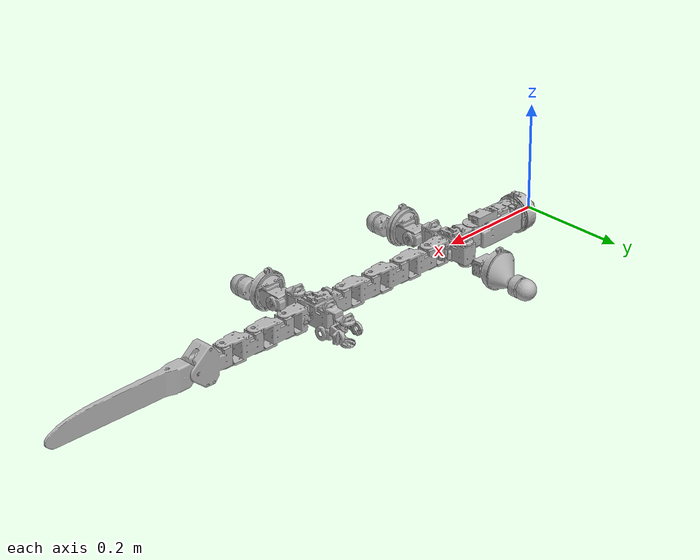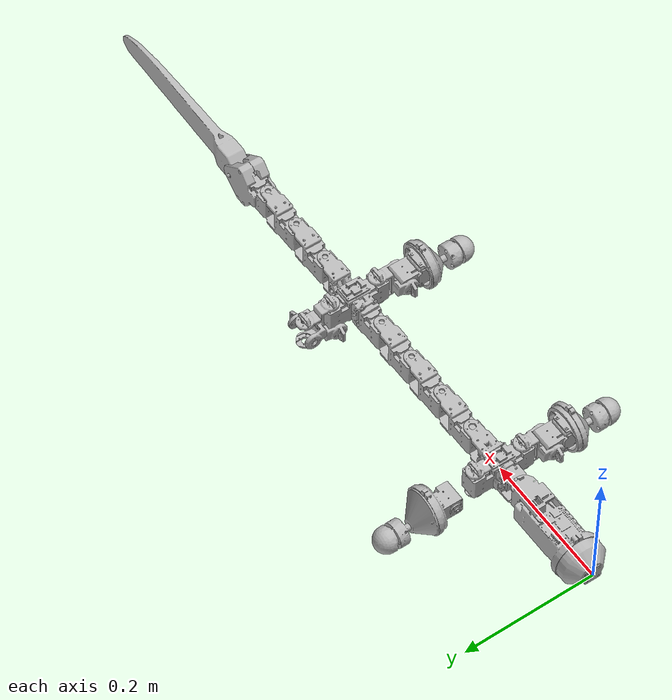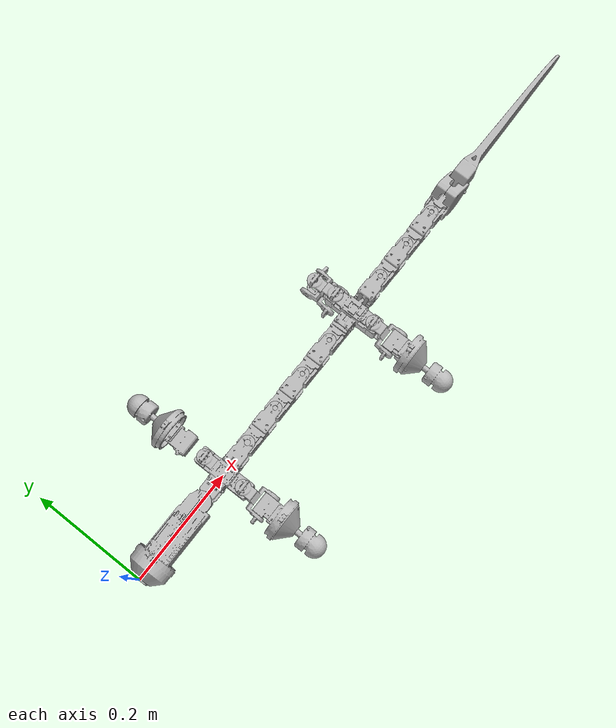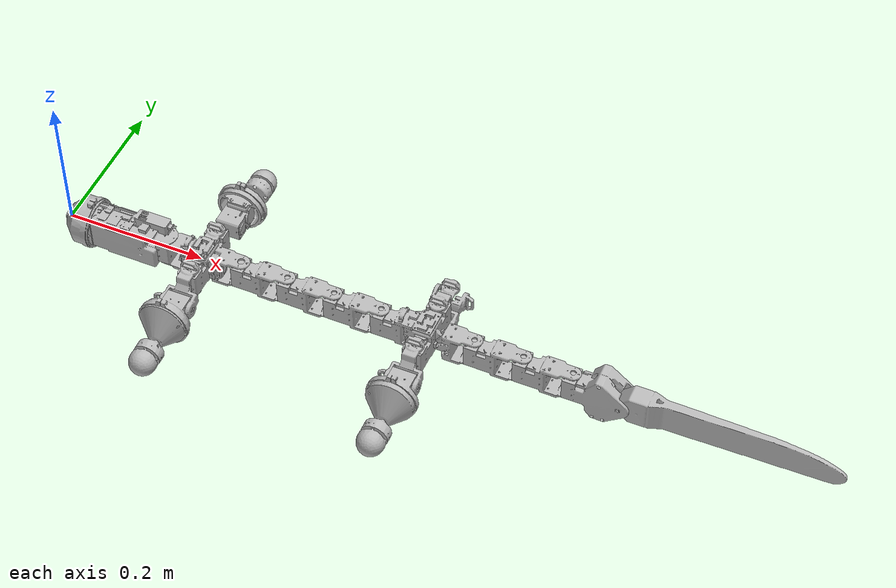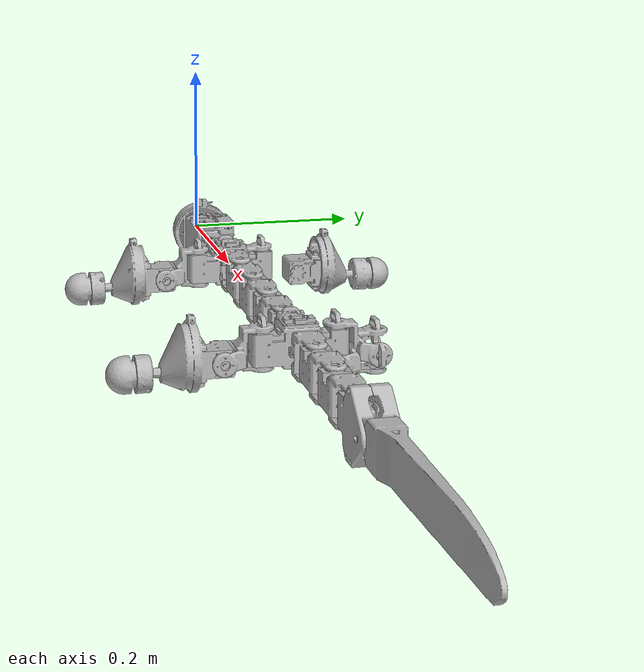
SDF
<?xml version="1.0" ?>
<sdf version="1.6">
	<world name="world">
		<model name="Polymander_v6.2.1">
			<pose>0.0 0.0 0.0 0.0 0.0 0.0</pose>
			<link name="link_body_00">
				<pose>0 0 0 0 0 0</pose>
				<inertial>
					<pose>0.0874556 0.00118105 0.00195082 0 0 0</pose>
					<mass>0.328768</mass>
					<density>1276.43</density>
					<inertia>
						<ixx>0.000134798</ixx>
						<ixy>7.4325e-07</ixy>
						<ixz>1.21979e-05</ixz>
						<iyy>0.000636069</iyy>
						<iyz>6.57418e-06</iyz>
						<izz>0.000609213</izz>
					</inertia>
				</inertial>
				<collision name="link_body_00_collision">
					<pose>0.0 0.0 0.0 0.0 0.0 0.0</pose>
					<geometry>
						<mesh>
							<uri>meshes/link_body_00_collision.stl</uri>
							<scale>0.001 0.001 0.001</scale>
						</mesh>
					</geometry>
				</collision>
				<visual name="link_body_00_visual">
					<pose>0.0 0.0 0.0 0.0 0.0 0.0</pose>
					<geometry>
						<mesh>
							<uri>meshes/link_body_00.obj</uri>
							<scale>0.001 0.001 0.001</scale>
						</mesh>
					</geometry>
				</visual>
			</link>
			<link name="link_body_01">
				<pose>0.146464 0 -0.00025 0 0 0</pose>
				<inertial>
					<pose>0.0574897 9.68358e-07 0.000163447 0 0 0</pose>
					<mass>0.274101</mass>
					<density>1705.28</density>
					<inertia>
						<ixx>0.000194628</ixx>
						<ixy>-8.1281e-11</ixy>
						<ixz>-6.20009e-07</ixz>
						<iyy>0.00011846</iyy>
						<iyz>4.35548e-11</iyz>
						<izz>0.000226475</izz>
					</inertia>
				</inertial>
				<collision name="link_body_01_collision">
					<pose>0.0 0.0 0.0 0.0 0.0 0.0</pose>
					<geometry>
						<mesh>
							<uri>meshes/link_body_01_collision.stl</uri>
							<scale>0.001 0.001 0.001</scale>
						</mesh>
					</geometry>
				</collision>
				<visual name="link_body_01_visual">
					<pose>0.0 0.0 0.0 0.0 0.0 0.0</pose>
					<geometry>
						<mesh>
							<uri>meshes/link_body_01.obj</uri>
							<scale>0.001 0.001 0.001</scale>
						</mesh>
					</geometry>
				</visual>
			</link>
			<link name="link_body_02">
				<pose>0.261764 0 -0.00025 0 0 0</pose>
				<inertial>
					<pose>0.0190111 2.10883e-11 -0.000412905 0 0 0</pose>
					<mass>0.107688</mass>
					<density>1955.69</density>
					<inertia>
						<ixx>2.18349e-05</ixx>
						<ixy>-2.87156e-14</ixy>
						<ixz>-3.3165e-07</ixz>
						<iyy>5.20956e-05</iyy>
						<iyz>-3.09053e-12</iyz>
						<izz>4.40876e-05</izz>
					</inertia>
				</inertial>
				<collision name="link_body_02_collision">
					<pose>0.0 0.0 0.0 0.0 0.0 0.0</pose>
					<geometry>
						<mesh>
							<uri>meshes/link_body_02_collision.stl</uri>
							<scale>0.001 0.001 0.001</scale>
						</mesh>
					</geometry>
				</collision>
				<visual name="link_body_02_visual">
					<pose>0.0 0.0 0.0 0.0 0.0 0.0</pose>
					<geometry>
						<mesh>
							<uri>meshes/link_body_02.obj</uri>
							<scale>0.001 0.001 0.001</scale>
						</mesh>
					</geometry>
				</visual>
			</link>
			<link name="link_body_03">
				<pose>0.330364 0 -0.00025 0 0 0</pose>
				<inertial>
					<pose>0.0190111 2.10883e-11 -0.000412905 0 0 0</pose>
					<mass>0.107688</mass>
					<density>1955.69</density>
					<inertia>
						<ixx>2.18349e-05</ixx>
						<ixy>-2.87156e-14</ixy>
						<ixz>-3.3165e-07</ixz>
						<iyy>5.20956e-05</iyy>
						<iyz>-3.09053e-12</iyz>
						<izz>4.40876e-05</izz>
					</inertia>
				</inertial>
				<collision name="link_body_03_collision">
					<pose>0.0 0.0 0.0 0.0 0.0 0.0</pose>
					<geometry>
						<mesh>
							<uri>meshes/link_body_03_collision.stl</uri>
							<scale>0.001 0.001 0.001</scale>
						</mesh>
					</geometry>
				</collision>
				<visual name="link_body_03_visual">
					<pose>0.0 0.0 0.0 0.0 0.0 0.0</pose>
					<geometry>
						<mesh>
							<uri>meshes/link_body_03.obj</uri>
							<scale>0.001 0.001 0.001</scale>
						</mesh>
					</geometry>
				</visual>
			</link>
			<link name="link_body_04">
				<pose>0.398964 0 -0.00025 0 0 0</pose>
				<inertial>
					<pose>0.0190111 2.10883e-11 -0.000412905 0 0 0</pose>
					<mass>0.107688</mass>
					<density>1955.69</density>
					<inertia>
						<ixx>2.18349e-05</ixx>
						<ixy>-2.87156e-14</ixy>
						<ixz>-3.3165e-07</ixz>
						<iyy>5.20956e-05</iyy>
						<iyz>-3.09053e-12</iyz>
						<izz>4.40876e-05</izz>
					</inertia>
				</inertial>
				<collision name="link_body_04_collision">
					<pose>0.0 0.0 0.0 0.0 0.0 0.0</pose>
					<geometry>
						<mesh>
							<uri>meshes/link_body_04_collision.stl</uri>
							<scale>0.001 0.001 0.001</scale>
						</mesh>
					</geometry>
				</collision>
				<visual name="link_body_04_visual">
					<pose>0.0 0.0 0.0 0.0 0.0 0.0</pose>
					<geometry>
						<mesh>
							<uri>meshes/link_body_04.obj</uri>
							<scale>0.001 0.001 0.001</scale>
						</mesh>
					</geometry>
				</visual>
			</link>
			<link name="link_body_05">
				<pose>0.467564 0 -0.00025 0 0 0</pose>
				<inertial>
					<pose>0.0494303 -4.54816e-06 -8.19532e-05 0 0 0</pose>
					<mass>0.321614</mass>
					<density>1821.14</density>
					<inertia>
						<ixx>0.000195584</ixx>
						<ixy>2.2803e-08</ixy>
						<ixz>-1.36018e-06</ixz>
						<iyy>0.000245362</iyy>
						<iyz>1.97283e-09</iyz>
						<izz>0.000358215</izz>
					</inertia>
				</inertial>
				<collision name="link_body_05_collision">
					<pose>0.0 0.0 0.0 0.0 0.0 0.0</pose>
					<geometry>
						<mesh>
							<uri>meshes/link_body_05_collision.stl</uri>
							<scale>0.001 0.001 0.001</scale>
						</mesh>
					</geometry>
				</collision>
				<visual name="link_body_05_visual">
					<pose>0.0 0.0 0.0 0.0 0.0 0.0</pose>
					<geometry>
						<mesh>
							<uri>meshes/link_body_05.obj</uri>
							<scale>0.001 0.001 0.001</scale>
						</mesh>
					</geometry>
				</visual>
			</link>
			<link name="link_body_06">
				<pose>0.553364 0 -0.00025 0 0 0</pose>
				<inertial>
					<pose>0.0171753 5.68356e-11 0.000179224 0 0 0</pose>
					<mass>0.0433459</mass>
					<density>1667.04</density>
					<inertia>
						<ixx>1.12532e-05</ixx>
						<ixy>1.84022e-14</ixy>
						<ixz>1.42377e-08</ixz>
						<iyy>1.36167e-05</iyy>
						<iyz>-3.08705e-12</iyz>
						<izz>8.27548e-06</izz>
					</inertia>
				</inertial>
				<collision name="link_body_06_collision">
					<pose>0.0 0.0 0.0 0.0 0.0 0.0</pose>
					<geometry>
						<mesh>
							<uri>meshes/link_body_06_collision.stl</uri>
							<scale>0.001 0.001 0.001</scale>
						</mesh>
					</geometry>
				</collision>
				<visual name="link_body_06_visual">
					<pose>0.0 0.0 0.0 0.0 0.0 0.0</pose>
					<geometry>
						<mesh>
							<uri>meshes/link_body_06.obj</uri>
							<scale>0.001 0.001 0.001</scale>
						</mesh>
					</geometry>
				</visual>
			</link>
			<link name="link_body_07">
				<pose>0.600764 0 -0.00025 0 0 0</pose>
				<inertial>
					<pose>0.0190111 2.10883e-11 -0.000412905 0 0 0</pose>
					<mass>0.107688</mass>
					<density>1955.69</density>
					<inertia>
						<ixx>2.18349e-05</ixx>
						<ixy>-2.87156e-14</ixy>
						<ixz>-3.3165e-07</ixz>
						<iyy>5.20956e-05</iyy>
						<iyz>-3.09053e-12</iyz>
						<izz>4.40876e-05</izz>
					</inertia>
				</inertial>
				<collision name="link_body_07_collision">
					<pose>0.0 0.0 0.0 0.0 0.0 0.0</pose>
					<geometry>
						<mesh>
							<uri>meshes/link_body_07_collision.stl</uri>
							<scale>0.001 0.001 0.001</scale>
						</mesh>
					</geometry>
				</collision>
				<visual name="link_body_07_visual">
					<pose>0.0 0.0 0.0 0.0 0.0 0.0</pose>
					<geometry>
						<mesh>
							<uri>meshes/link_body_07.obj</uri>
							<scale>0.001 0.001 0.001</scale>
						</mesh>
					</geometry>
				</visual>
			</link>
			<link name="link_body_08">
				<pose>0.669364 0 -0.00025 0 0 0</pose>
				<inertial>
					<pose>0.0190111 2.10883e-11 -0.000412905 0 0 0</pose>
					<mass>0.107688</mass>
					<density>1955.69</density>
					<inertia>
						<ixx>2.18349e-05</ixx>
						<ixy>-2.87156e-14</ixy>
						<ixz>-3.3165e-07</ixz>
						<iyy>5.20956e-05</iyy>
						<iyz>-3.09053e-12</iyz>
						<izz>4.40876e-05</izz>
					</inertia>
				</inertial>
				<collision name="link_body_08_collision">
					<pose>0.0 0.0 0.0 0.0 0.0 0.0</pose>
					<geometry>
						<mesh>
							<uri>meshes/link_body_08_collision.stl</uri>
							<scale>0.001 0.001 0.001</scale>
						</mesh>
					</geometry>
				</collision>
				<visual name="link_body_08_visual">
					<pose>0.0 0.0 0.0 0.0 0.0 0.0</pose>
					<geometry>
						<mesh>
							<uri>meshes/link_body_08.obj</uri>
							<scale>0.001 0.001 0.001</scale>
						</mesh>
					</geometry>
				</visual>
			</link>
			<link name="link_body_09">
				<pose>0.737965 0 -0.00025 0 0 0</pose>
				<inertial>
					<pose>0.0289981 5.51015e-05 -0.000259858 0 0 0</pose>
					<mass>0.164651</mass>
					<density>1329.71</density>
					<inertia>
						<ixx>5.36951e-05</ixx>
						<ixy>-1.31712e-07</ixy>
						<ixz>-7.1426e-07</ixz>
						<iyy>0.000114635</iyy>
						<iyz>2.5573e-07</iyz>
						<izz>9.66059e-05</izz>
					</inertia>
				</inertial>
				<collision name="link_body_09_collision">
					<pose>0.0 0.0 0.0 0.0 0.0 0.0</pose>
					<geometry>
						<mesh>
							<uri>meshes/link_body_09_collision.stl</uri>
							<scale>0.001 0.001 0.001</scale>
						</mesh>
					</geometry>
				</collision>
				<visual name="link_body_09_visual">
					<pose>0.0 0.0 0.0 0.0 0.0 0.0</pose>
					<geometry>
						<mesh>
							<uri>meshes/link_body_09.obj</uri>
							<scale>0.001 0.001 0.001</scale>
						</mesh>
					</geometry>
				</visual>
			</link>
			<link name="link_body_10">
				<pose>0.806215 0 -0.00025 0 0 0</pose>
				<inertial>
					<pose>0.110208 1.52813e-11 -0.000247837 0 0 0</pose>
					<mass>0.18959</mass>
					<density>1224.67</density>
					<inertia>
						<ixx>3.50341e-05</ixx>
						<ixy>8.38133e-14</ixy>
						<ixz>1.43151e-05</ixz>
						<iyy>0.0012226</iyy>
						<iyz>2.61695e-13</iyz>
						<izz>0.00119837</izz>
					</inertia>
				</inertial>
				<collision name="link_body_10_collision">
					<pose>0.0 0.0 0.0 0.0 0.0 0.0</pose>
					<geometry>
						<mesh>
							<uri>meshes/link_body_10_collision.stl</uri>
							<scale>0.001 0.001 0.001</scale>
						</mesh>
					</geometry>
				</collision>
				<visual name="link_body_10_visual">
					<pose>0.0 0.0 0.0 0.0 0.0 0.0</pose>
					<geometry>
						<mesh>
							<uri>meshes/link_body_10.obj</uri>
							<scale>0.001 0.001 0.001</scale>
						</mesh>
					</geometry>
				</visual>
			</link>
			<link name="link_leg_0_L_0">
				<pose>0.204114 -0.038 -0.00025 0 0 0</pose>
				<inertial>
					<pose>-0.00143781 -0.0216908 -0.00185518 0 0 0</pose>
					<mass>0.0194482</mass>
					<density>1165.24</density>
					<inertia>
						<ixx>9.53517e-06</ixx>
						<ixy>-5.75394e-07</ixy>
						<ixz>-2.49215e-07</ixz>
						<iyy>8.34481e-06</iyy>
						<iyz>-2.10063e-06</iyz>
						<izz>9.20573e-06</izz>
					</inertia>
				</inertial>
				<collision name="link_leg_0_L_0_collision">
					<pose>0.0 0.0 0.0 0.0 0.0 0.0</pose>
					<geometry>
						<mesh>
							<uri>meshes/link_leg_0_L_0_collision.stl</uri>
							<scale>0.001 0.001 0.001</scale>
						</mesh>
					</geometry>
				</collision>
				<visual name="link_leg_0_L_0_visual">
					<pose>0.0 0.0 0.0 0.0 0.0 0.0</pose>
					<geometry>
						<mesh>
							<uri>meshes/link_leg_0_L_0.obj</uri>
							<scale>0.001 0.001 0.001</scale>
						</mesh>
					</geometry>
				</visual>
			</link>
			<link name="link_leg_0_L_1">
				<pose>0.204114 -0.0795 -0.01025 0 0 0</pose>
				<inertial>
					<pose>0.000271374 -0.0359908 -0.00183955 0 0 0</pose>
					<mass>0.164364</mass>
					<density>1222.76</density>
					<inertia>
						<ixx>0.00020176</ixx>
						<ixy>-1.05974e-06</ixy>
						<ixz>-6.45828e-08</ixz>
						<iyy>5.05393e-05</iyy>
						<iyz>-2.00942e-05</iyz>
						<izz>0.000195697</izz>
					</inertia>
				</inertial>
				<collision name="link_leg_0_L_1_collision">
					<pose>0.0 0.0 0.0 0.0 0.0 0.0</pose>
					<geometry>
						<mesh>
							<uri>meshes/link_leg_0_L_1_collision.stl</uri>
							<scale>0.001 0.001 0.001</scale>
						</mesh>
					</geometry>
				</collision>
				<visual name="link_leg_0_L_1_visual">
					<pose>0.0 0.0 0.0 0.0 0.0 0.0</pose>
					<geometry>
						<mesh>
							<uri>meshes/link_leg_0_L_1.obj</uri>
							<scale>0.001 0.001 0.001</scale>
						</mesh>
					</geometry>
				</visual>
			</link>
			<link name="link_leg_0_R_0">
				<pose>0.204114 0.038 -0.00025 0 0 0</pose>
				<inertial>
					<pose>0.00143781 0.0216908 -0.00185518 0 0 0</pose>
					<mass>0.0194482</mass>
					<density>1165.57</density>
					<inertia>
						<ixx>9.53517e-06</ixx>
						<ixy>-5.75391e-07</ixy>
						<ixz>2.49214e-07</ixz>
						<iyy>8.34481e-06</iyy>
						<iyz>2.10064e-06</iyz>
						<izz>9.20573e-06</izz>
					</inertia>
				</inertial>
				<collision name="link_leg_0_R_0_collision">
					<pose>0.0 0.0 0.0 0.0 0.0 0.0</pose>
					<geometry>
						<mesh>
							<uri>meshes/link_leg_0_R_0_collision.stl</uri>
							<scale>0.001 0.001 0.001</scale>
						</mesh>
					</geometry>
				</collision>
				<visual name="link_leg_0_R_0_visual">
					<pose>0.0 0.0 0.0 0.0 0.0 0.0</pose>
					<geometry>
						<mesh>
							<uri>meshes/link_leg_0_R_0.obj</uri>
							<scale>0.001 0.001 0.001</scale>
						</mesh>
					</geometry>
				</visual>
			</link>
			<link name="link_leg_0_R_1">
				<pose>0.204114 0.0795 -0.01025 0 0 0</pose>
				<inertial>
					<pose>-0.000271374 0.0359908 -0.00183955 0 0 0</pose>
					<mass>0.164364</mass>
					<density>1222.69</density>
					<inertia>
						<ixx>0.00020176</ixx>
						<ixy>-1.05974e-06</ixy>
						<ixz>6.45828e-08</ixz>
						<iyy>5.05393e-05</iyy>
						<iyz>2.00942e-05</iyz>
						<izz>0.000195697</izz>
					</inertia>
				</inertial>
				<collision name="link_leg_0_R_1_collision">
					<pose>0.0 0.0 0.0 0.0 0.0 0.0</pose>
					<geometry>
						<mesh>
							<uri>meshes/link_leg_0_R_1_collision.stl</uri>
							<scale>0.001 0.001 0.001</scale>
						</mesh>
					</geometry>
				</collision>
				<visual name="link_leg_0_R_1_visual">
					<pose>0.0 0.0 0.0 0.0 0.0 0.0</pose>
					<geometry>
						<mesh>
							<uri>meshes/link_leg_0_R_1.obj</uri>
							<scale>0.001 0.001 0.001</scale>
						</mesh>
					</geometry>
				</visual>
			</link>
			<link name="link_leg_1_L_0">
				<pose>0.532614 -0.038 -0.00025 0 0 0</pose>
				<inertial>
					<pose>-0.00143781 -0.0216908 -0.00185518 0 0 0</pose>
					<mass>0.0194482</mass>
					<density>1165.24</density>
					<inertia>
						<ixx>9.53517e-06</ixx>
						<ixy>-5.75394e-07</ixy>
						<ixz>-2.49217e-07</ixz>
						<iyy>8.34481e-06</iyy>
						<iyz>-2.10063e-06</iyz>
						<izz>9.20573e-06</izz>
					</inertia>
				</inertial>
				<collision name="link_leg_1_L_0_collision">
					<pose>0.0 0.0 0.0 0.0 0.0 0.0</pose>
					<geometry>
						<mesh>
							<uri>meshes/link_leg_1_L_0_collision.stl</uri>
							<scale>0.001 0.001 0.001</scale>
						</mesh>
					</geometry>
				</collision>
				<visual name="link_leg_1_L_0_visual">
					<pose>0.0 0.0 0.0 0.0 0.0 0.0</pose>
					<geometry>
						<mesh>
							<uri>meshes/link_leg_1_L_0.obj</uri>
							<scale>0.001 0.001 0.001</scale>
						</mesh>
					</geometry>
				</visual>
			</link>
			<link name="link_leg_1_L_1">
				<pose>0.532614 -0.0795 -0.01025 0 0 0</pose>
				<inertial>
					<pose>0.000311355 -0.0358733 -0.00179593 0 0 0</pose>
					<mass>0.164364</mass>
					<density>1225.5</density>
					<inertia>
						<ixx>0.000201757</ixx>
						<ixy>-7.46628e-07</ixy>
						<ixz>-4.22467e-08</ixz>
						<iyy>5.0421e-05</iyy>
						<iyz>-1.99494e-05</iyz>
						<izz>0.000195818</izz>
					</inertia>
				</inertial>
				<collision name="link_leg_1_L_1_collision">
					<pose>0.0 0.0 0.0 0.0 0.0 0.0</pose>
					<geometry>
						<mesh>
							<uri>meshes/link_leg_1_L_1_collision.stl</uri>
							<scale>0.001 0.001 0.001</scale>
						</mesh>
					</geometry>
				</collision>
				<visual name="link_leg_1_L_1_visual">
					<pose>0.0 0.0 0.0 0.0 0.0 0.0</pose>
					<geometry>
						<mesh>
							<uri>meshes/link_leg_1_L_1.obj</uri>
							<scale>0.001 0.001 0.001</scale>
						</mesh>
					</geometry>
				</visual>
			</link>
			<link name="link_leg_1_R_0">
				<pose>0.532614 0.038 -0.00025 0 0 0</pose>
				<inertial>
					<pose>0.00143781 0.0216908 -0.00185518 0 0 0</pose>
					<mass>0.0194482</mass>
					<density>1165.57</density>
					<inertia>
						<ixx>9.53517e-06</ixx>
						<ixy>-5.75391e-07</ixy>
						<ixz>2.49214e-07</ixz>
						<iyy>8.34481e-06</iyy>
						<iyz>2.10064e-06</iyz>
						<izz>9.20573e-06</izz>
					</inertia>
				</inertial>
				<collision name="link_leg_1_R_0_collision">
					<pose>0.0 0.0 0.0 0.0 0.0 0.0</pose>
					<geometry>
						<mesh>
							<uri>meshes/link_leg_1_R_0_collision.stl</uri>
							<scale>0.001 0.001 0.001</scale>
						</mesh>
					</geometry>
				</collision>
				<visual name="link_leg_1_R_0_visual">
					<pose>0.0 0.0 0.0 0.0 0.0 0.0</pose>
					<geometry>
						<mesh>
							<uri>meshes/link_leg_1_R_0.obj</uri>
							<scale>0.001 0.001 0.001</scale>
						</mesh>
					</geometry>
				</visual>
			</link>
			<link name="link_leg_1_R_1">
				<pose>0.532614 0.0795 -0.01025 0 0 0</pose>
				<inertial>
					<pose>-0.00023359 0.0358733 -0.00180347 0 0 0</pose>
					<mass>0.164364</mass>
					<density>1224.74</density>
					<inertia>
						<ixx>0.000201777</ixx>
						<ixy>-1.41312e-06</ixy>
						<ixz>1.44843e-07</ixz>
						<iyy>5.04478e-05</iyy>
						<iyz>2.00098e-05</iyz>
						<izz>0.000195825</izz>
					</inertia>
				</inertial>
				<collision name="link_leg_1_R_1_collision">
					<pose>0.0 0.0 0.0 0.0 0.0 0.0</pose>
					<geometry>
						<mesh>
							<uri>meshes/link_leg_1_R_1_collision.stl</uri>
							<scale>0.001 0.001 0.001</scale>
						</mesh>
					</geometry>
				</collision>
				<visual name="link_leg_1_R_1_visual">
					<pose>0.0 0.0 0.0 0.0 0.0 0.0</pose>
					<geometry>
						<mesh>
							<uri>meshes/link_leg_1_R_1.obj</uri>
							<scale>0.001 0.001 0.001</scale>
						</mesh>
					</geometry>
				</visual>
			</link>
			<joint name="joint_body_00" type="revolute">
				<parent>link_body_00</parent>
				<child>link_body_01</child>
				<pose>0 0 0 0 0 0</pose>
				<axis>
					<xyz>0.0 0.0 1.0</xyz>
					<limit>
						<lower>-1.5708</lower>
						<upper>1.5708</upper>
					</limit>
				</axis>
			</joint>
			<joint name="joint_body_01" type="revolute">
				<parent>link_body_01</parent>
				<child>link_body_02</child>
				<pose>0 0 0 0 0 0</pose>
				<axis>
					<xyz>0.0 0.0 1.0</xyz>
					<limit>
						<lower>-1.5708</lower>
						<upper>1.5708</upper>
					</limit>
				</axis>
			</joint>
			<joint name="joint_body_02" type="revolute">
				<parent>link_body_02</parent>
				<child>link_body_03</child>
				<pose>0 0 0 0 0 0</pose>
				<axis>
					<xyz>0.0 0.0 1.0</xyz>
					<limit>
						<lower>-1.5708</lower>
						<upper>1.5708</upper>
					</limit>
				</axis>
			</joint>
			<joint name="joint_body_03" type="revolute">
				<parent>link_body_03</parent>
				<child>link_body_04</child>
				<pose>0 0 0 0 0 0</pose>
				<axis>
					<xyz>0.0 0.0 1.0</xyz>
					<limit>
						<lower>-1.5708</lower>
						<upper>1.5708</upper>
					</limit>
				</axis>
			</joint>
			<joint name="joint_body_04" type="revolute">
				<parent>link_body_04</parent>
				<child>link_body_05</child>
				<pose>0 0 0 0 0 0</pose>
				<axis>
					<xyz>0.0 0.0 1.0</xyz>
					<limit>
						<lower>-1.5708</lower>
						<upper>1.5708</upper>
					</limit>
				</axis>
			</joint>
			<joint name="joint_body_05_passive" type="revolute">
				<parent>link_body_05</parent>
				<child>link_body_06</child>
				<pose>0 0 0 0 0 0</pose>
				<axis>
					<xyz>0.0 1.0 0.0</xyz>
					<limit>
						<lower>-0.401426</lower>
						<upper>0.401426</upper>
					</limit>
				</axis>
			</joint>
			<joint name="joint_body_06" type="revolute">
				<parent>link_body_06</parent>
				<child>link_body_07</child>
				<pose>0 0 0 0 0 0</pose>
				<axis>
					<xyz>0.0 0.0 1.0</xyz>
					<limit>
						<lower>-1.5708</lower>
						<upper>1.5708</upper>
					</limit>
				</axis>
			</joint>
			<joint name="joint_body_07" type="revolute">
				<parent>link_body_07</parent>
				<child>link_body_08</child>
				<pose>0 0 0 0 0 0</pose>
				<axis>
					<xyz>0.0 0.0 1.0</xyz>
					<limit>
						<lower>-1.5708</lower>
						<upper>1.5708</upper>
					</limit>
				</axis>
			</joint>
			<joint name="joint_body_08" type="revolute">
				<parent>link_body_08</parent>
				<child>link_body_09</child>
				<pose>0 0 0 0 0 0</pose>
				<axis>
					<xyz>0.0 0.0 1.0</xyz>
					<limit>
						<lower>-1.5708</lower>
						<upper>1.5708</upper>
					</limit>
				</axis>
			</joint>
			<joint name="joint_body_09_passive" type="revolute">
				<parent>link_body_09</parent>
				<child>link_body_10</child>
				<pose>0 0 0 0 0 0</pose>
				<axis>
					<xyz>0.0 1.0 0.0</xyz>
					<limit>
						<lower>-0.401426</lower>
						<upper>0.401426</upper>
					</limit>
				</axis>
			</joint>
			<joint name="joint_leg_1_L_0" type="revolute">
				<parent>link_body_05</parent>
				<child>link_leg_1_L_0</child>
				<pose>0 0 0 0 0 0</pose>
				<axis>
					<xyz>0.0 0.0 -1.0</xyz>
					<limit>
						<lower>-1.27409</lower>
						<upper>1.27409</upper>
					</limit>
				</axis>
			</joint>
			<joint name="joint_leg_1_L_1" type="revolute">
				<parent>link_leg_1_L_0</parent>
				<child>link_leg_1_L_1</child>
				<pose>0 0 0 0 0 0</pose>
				<axis>
					<xyz>1.0 0.0 0.0</xyz>
					<limit>
						<lower>-1.25664</lower>
						<upper>1.8326</upper>
					</limit>
				</axis>
			</joint>
			<joint name="joint_leg_1_R_0" type="revolute">
				<parent>link_body_05</parent>
				<child>link_leg_1_R_0</child>
				<pose>0 0 0 0 0 0</pose>
				<axis>
					<xyz>0.0 0.0 1.0</xyz>
					<limit>
						<lower>-1.27409</lower>
						<upper>1.27409</upper>
					</limit>
				</axis>
			</joint>
			<joint name="joint_leg_1_R_1" type="revolute">
				<parent>link_leg_1_R_0</parent>
				<child>link_leg_1_R_1</child>
				<pose>0 0 0 0 0 0</pose>
				<axis>
					<xyz>-1.0 0.0 0.0</xyz>
					<limit>
						<lower>-1.25664</lower>
						<upper>1.8326</upper>
					</limit>
				</axis>
			</joint>
			<joint name="joint_leg_0_L_0" type="revolute">
				<parent>link_body_01</parent>
				<child>link_leg_0_L_0</child>
				<pose>0 0 0 0 0 0</pose>
				<axis>
					<xyz>0.0 0.0 -1.0</xyz>
					<limit>
						<lower>-1.27409</lower>
						<upper>1.27409</upper>
					</limit>
				</axis>
			</joint>
			<joint name="joint_leg_0_L_1" type="revolute">
				<parent>link_leg_0_L_0</parent>
				<child>link_leg_0_L_1</child>
				<pose>0 0 0 0 0 0</pose>
				<axis>
					<xyz>1.0 0.0 0.0</xyz>
					<limit>
						<lower>-1.25664</lower>
						<upper>1.8326</upper>
					</limit>
				</axis>
			</joint>
			<joint name="joint_leg_0_R_0" type="revolute">
				<parent>link_body_01</parent>
				<child>link_leg_0_R_0</child>
				<pose>0 0 0 0 0 0</pose>
				<axis>
					<xyz>0.0 0.0 1.0</xyz>
					<limit>
						<lower>-1.27409</lower>
						<upper>1.27409</upper>
					</limit>
				</axis>
			</joint>
			<joint name="joint_leg_0_R_1" type="revolute">
				<parent>link_leg_0_R_0</parent>
				<child>link_leg_0_R_1</child>
				<pose>0 0 0 0 0 0</pose>
				<axis>
					<xyz>-1.0 0.0 0.0</xyz>
					<limit>
						<lower>-1.25664</lower>
						<upper>1.8326</upper>
					</limit>
				</axis>
			</joint>
			<linkend name="link_body_10">
				<pose>1.10521 0 -0.00025</pose>
			</linkend>
			<linkend name="link_leg_1_L_1">
				<pose>0.532614 -0.1953 -0.01025</pose>
			</linkend>
			<linkend name="link_leg_1_R_1">
				<pose>0.532614 0.1953 -0.01025</pose>
			</linkend>
			<linkend name="link_leg_0_L_1">
				<pose>0.204114 -0.1953 -0.01025</pose>
			</linkend>
			<linkend name="link_leg_0_R_1">
				<pose>0.204114 0.1953 -0.01025</pose>
			</linkend>
		</model>
	</world>
</sdf>
